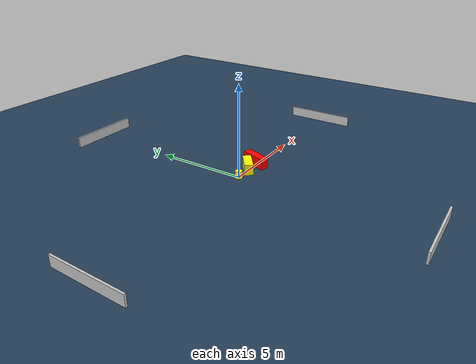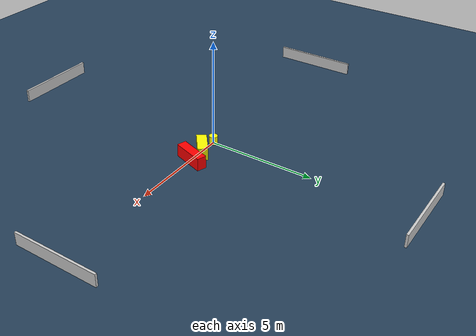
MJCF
<?xml version="1.0" ?>
<mujoco model="generated_environment">
  <option timestep="0.01" integrator="RK4" cone="elliptic"/>
  <default>
    <geom density="1"/>
  </default>
  <asset>
    <texture builtin="gradient" height="3072" name="skybox" rgb1="0.3 0.5 0.7" rgb2="0 0 0" type="skybox" width="512"/>
    <texture builtin="checker" height="300" name="groundplane" rgb1="0.2 0.3 0.4" rgb2="0.1 0.2 0.3" type="2d" width="300"/>
    <material name="groundplane" reflectance="0.2" texrepeat="5 5" texture="groundplane"/>
  </asset>
  <worldbody>
    <light dir="0 0 -1" directional="true" pos="0 0 1.5"/>
    <geom condim="3" friction="0.5 0.005 0.001" material="groundplane" name="floor" pos="0 0 0" size="0 0 0.05" type="plane"/>
    <body name="walls">
      <geom name="wall_1" condim="4" pos="-10.0 0.0 0.3" rgba="0.800000011920929 0.800000011920929 0.800000011920929 1.0" size="0.05 2.0 0.3" type="box"/>
      <geom name="wall_2" condim="4" pos="10.0 0.0 0.3" rgba="0.800000011920929 0.800000011920929 0.800000011920929 1.0" size="0.05 2.0 0.3" type="box"/>
      <geom name="wall_3" condim="4" pos="0.0 -10.0 0.3" rgba="0.800000011920929 0.800000011920929 0.800000011920929 1.0" size="2.0 0.05 0.3" type="box"/>
      <geom name="wall_4" condim="4" pos="0.0 10.0 0.3" rgba="0.800000011920929 0.800000011920929 0.800000011920929 1.0" size="2.0 0.05 0.3" type="box"/>
    </body>
    <body name="robot">
      <joint name="joint_x" type="slide" pos="0 0 0" axis="1 0 0"/>
      <joint name="joint_y" type="slide" pos="0 0 0" axis="0 1 0"/>
      <geom name="robot" type="cylinder" pos="0.0 0.0 0.2" size="0.2 0.2 0.0" mass="5.0" friction="1.0 0.005 0.0001" condim="4" rgba="1.0 1.0 0.0 1.0"/>
    </body>
    <body name="obstacle_1_movable">
      <geom name="obstacle_1_movable" condim="4" pos="0.9780293988979086 0.06287830051040823 0.3" euler="0 0 218.2044912377272" friction="0.0 0.005 0.001" rgba="1.0 1.0 0.0 1.0" size="0.6047561341742281 0.23427143164970995 0.3" type="box" mass="0.1"/>
      <joint type="free"/>
    </body>
    <body name="obstacle_2_static">
      <geom name="obstacle_2_static" condim="4" pos="1.8188120743981495 0.08656344210736311 0.3" euler="0 0 71.31216008729722" friction="0.0 0.005 0.001" rgba="1.0 0.0 0.0 1.0" size="0.759651169373057 0.2226547433990276 0.3" type="box"/>
    </body>
  </worldbody>
  <actuator>
    <motor name="actuator_x" joint="joint_x" gear="1" ctrlrange="-1 1"/>
    <motor name="actuator_y" joint="joint_y" gear="1" ctrlrange="-1 1"/>
  </actuator>
</mujoco>
